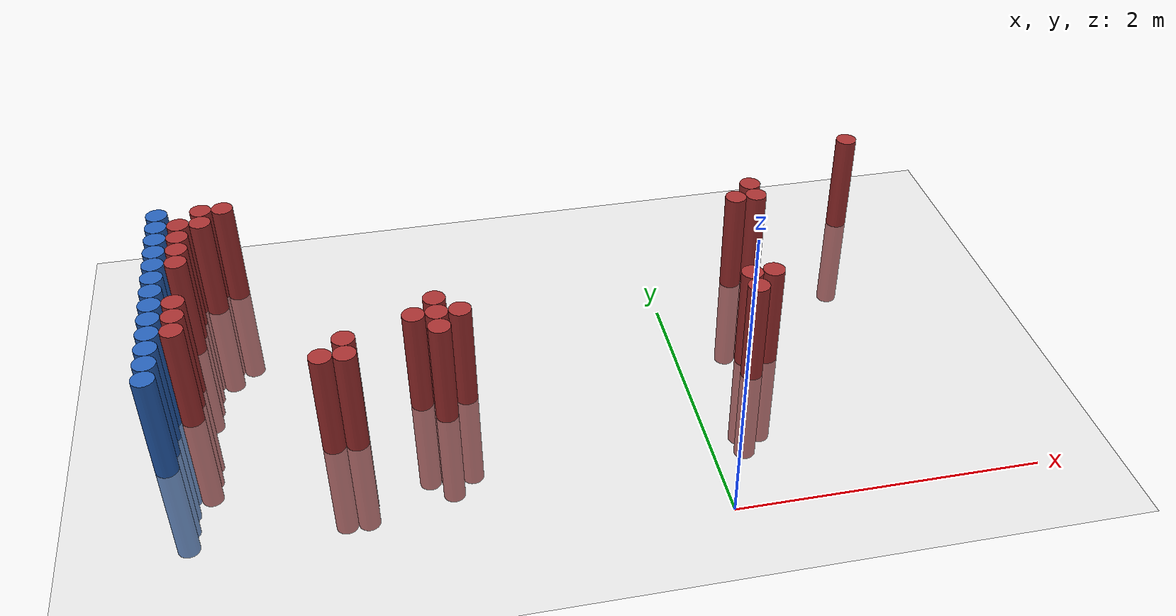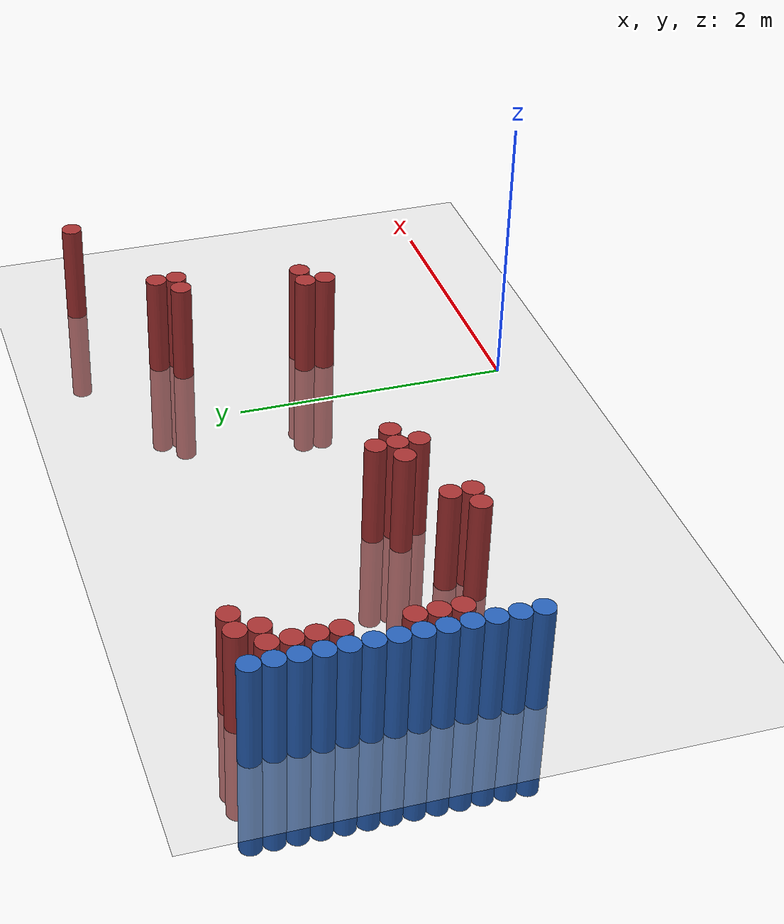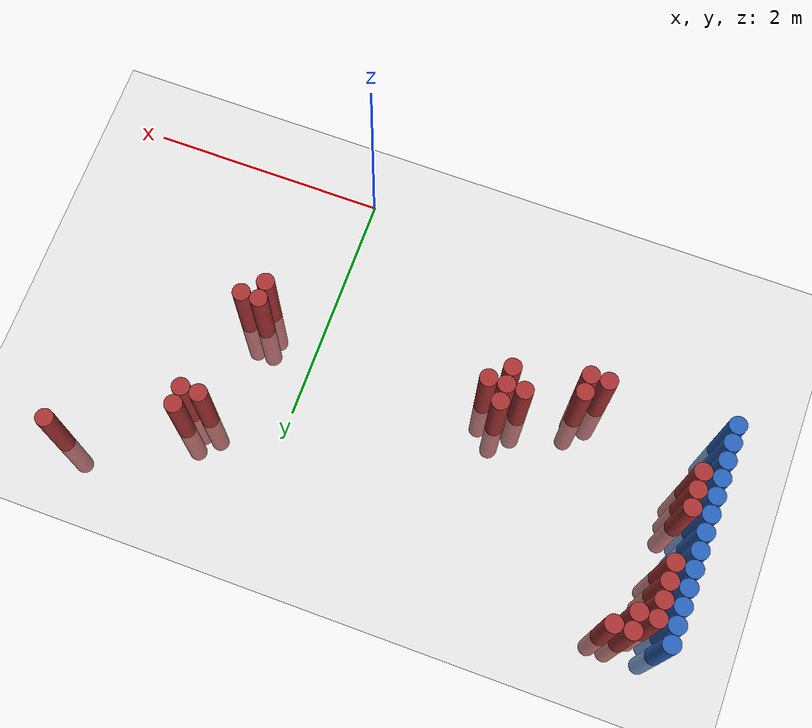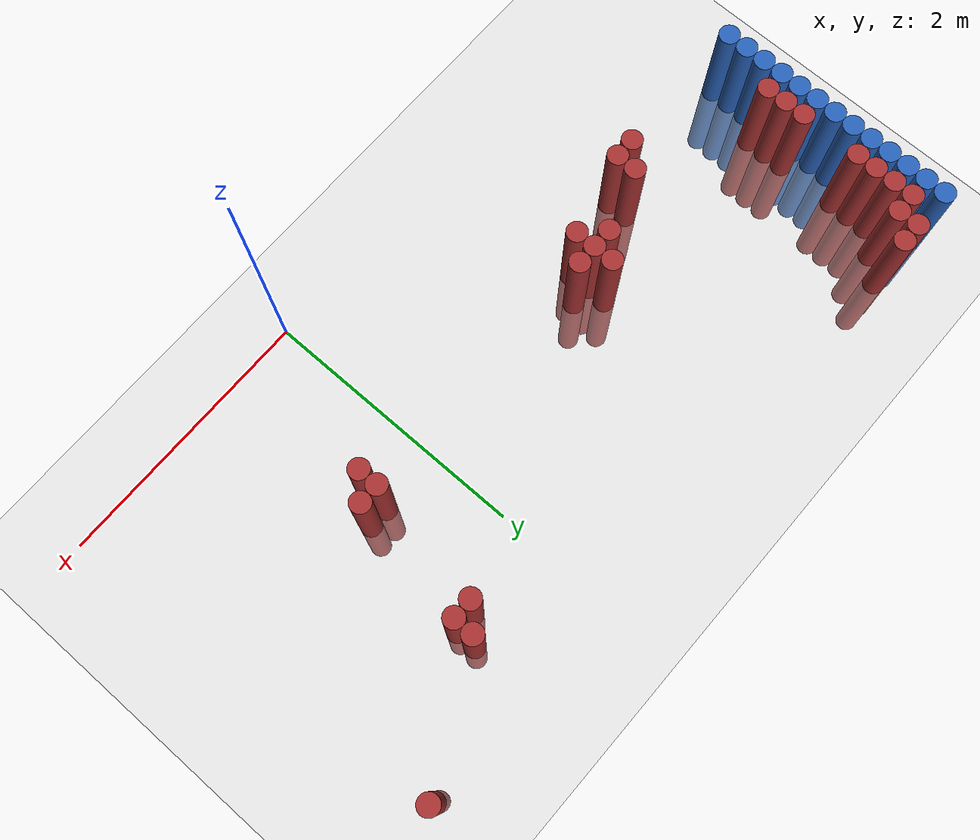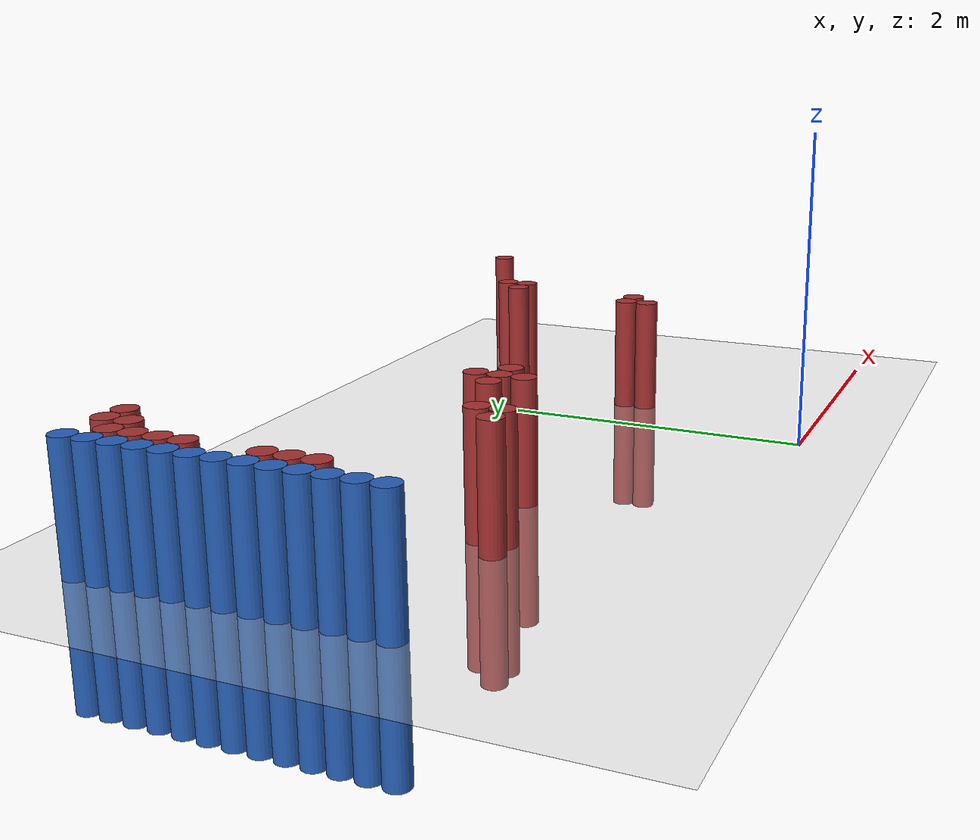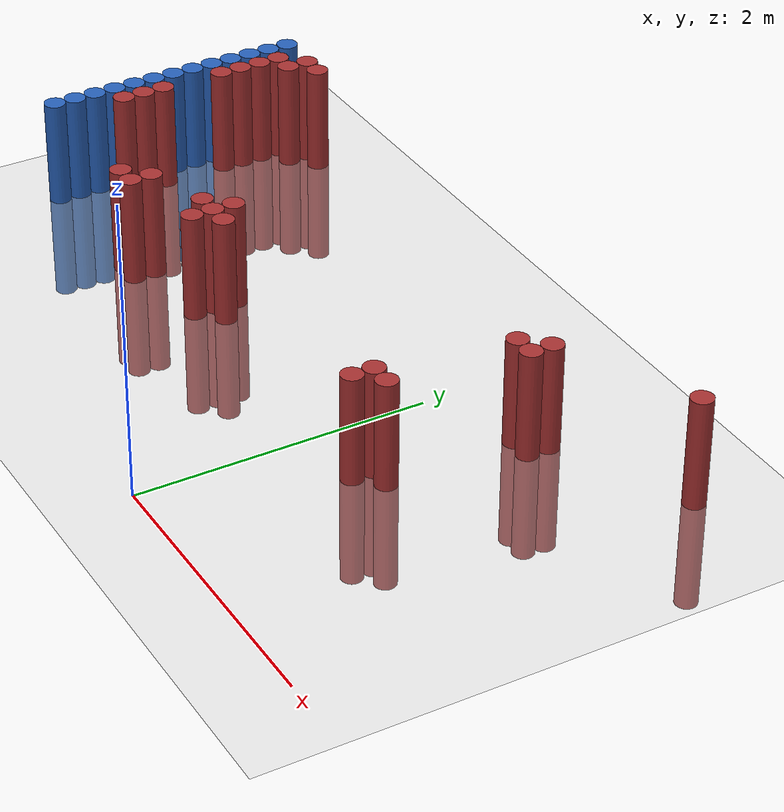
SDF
<sdf version="1.6">
 <world name="default">
  <model name="ground_plane">
   <static>1</static>
   <link name="link">
    <collision name="collision">
     <geometry><plane><normal>0 0 1</normal><size>100 100</size></plane></geometry>
     <surface><friction><ode><mu>100</mu><mu2>50</mu2></ode></friction></surface>
    </collision>
    <visual name="visual">
     <cast_shadows>0</cast_shadows>
     <geometry><plane><normal>0 0 1</normal><size>100 100</size></plane></geometry>
     <material>
      <script><uri>file://media/materials/scripts/gazebo.material</uri><name>Gazebo/Grey</name></script>
     </material>
    </visual>
   </link>
  </model>
  <model name="unit_cylinder_129">
   <static>1</static>
   <pose>-3.425000 1.075000 0.000000 0.000000 0.000000 0.000000</pose>
   <link name="link">
    <inertial>
     <mass>1</mass>
     <inertia><ixx>0.145833</ixx><ixy>0</ixy><ixz>0</ixz><iyy>0.145833</iyy><iyz>0</iyz><izz>0.125</izz></inertia>
    </inertial>
    <collision name="collision">
     <geometry><cylinder><radius>0.075000</radius><length>1.5</length></cylinder></geometry>
    </collision>
    <visual name="visual">
     <geometry><cylinder><radius>0.075000</radius><length>1.5</length></cylinder></geometry>
     <material>
      <ambient>0.152000 0.379000 0.720000 1</ambient>
      <diffuse>0.152000 0.379000 0.720000 1</diffuse>
     </material>
     <material>
      <script><name>Gazebo/Grey</name><uri>file://media/materials/scripts/gazebo.material</uri></script>
     </material>
    </visual>
   </link>
  </model>
  <model name="unit_cylinder_131">
   <static>1</static>
   <pose>-3.425000 1.225000 0.000000 0.000000 0.000000 0.000000</pose>
   <link name="link">
    <inertial>
     <mass>1</mass>
     <inertia><ixx>0.145833</ixx><ixy>0</ixy><ixz>0</ixz><iyy>0.145833</iyy><iyz>0</iyz><izz>0.125</izz></inertia>
    </inertial>
    <collision name="collision">
     <geometry><cylinder><radius>0.075000</radius><length>1.5</length></cylinder></geometry>
    </collision>
    <visual name="visual">
     <geometry><cylinder><radius>0.075000</radius><length>1.5</length></cylinder></geometry>
     <material>
      <ambient>0.152000 0.379000 0.720000 1</ambient>
      <diffuse>0.152000 0.379000 0.720000 1</diffuse>
     </material>
     <material>
      <script><name>Gazebo/Grey</name><uri>file://media/materials/scripts/gazebo.material</uri></script>
     </material>
    </visual>
   </link>
  </model>
  <model name="unit_cylinder_133">
   <static>1</static>
   <pose>-3.425000 1.375000 0.000000 0.000000 0.000000 0.000000</pose>
   <link name="link">
    <inertial>
     <mass>1</mass>
     <inertia><ixx>0.145833</ixx><ixy>0</ixy><ixz>0</ixz><iyy>0.145833</iyy><iyz>0</iyz><izz>0.125</izz></inertia>
    </inertial>
    <collision name="collision">
     <geometry><cylinder><radius>0.075000</radius><length>1.5</length></cylinder></geometry>
    </collision>
    <visual name="visual">
     <geometry><cylinder><radius>0.075000</radius><length>1.5</length></cylinder></geometry>
     <material>
      <ambient>0.152000 0.379000 0.720000 1</ambient>
      <diffuse>0.152000 0.379000 0.720000 1</diffuse>
     </material>
     <material>
      <script><name>Gazebo/Grey</name><uri>file://media/materials/scripts/gazebo.material</uri></script>
     </material>
    </visual>
   </link>
  </model>
  <model name="unit_cylinder_135">
   <static>1</static>
   <pose>-3.425000 1.525000 0.000000 0.000000 0.000000 0.000000</pose>
   <link name="link">
    <inertial>
     <mass>1</mass>
     <inertia><ixx>0.145833</ixx><ixy>0</ixy><ixz>0</ixz><iyy>0.145833</iyy><iyz>0</iyz><izz>0.125</izz></inertia>
    </inertial>
    <collision name="collision">
     <geometry><cylinder><radius>0.075000</radius><length>1.5</length></cylinder></geometry>
    </collision>
    <visual name="visual">
     <geometry><cylinder><radius>0.075000</radius><length>1.5</length></cylinder></geometry>
     <material>
      <ambient>0.152000 0.379000 0.720000 1</ambient>
      <diffuse>0.152000 0.379000 0.720000 1</diffuse>
     </material>
     <material>
      <script><name>Gazebo/Grey</name><uri>file://media/materials/scripts/gazebo.material</uri></script>
     </material>
    </visual>
   </link>
  </model>
  <model name="unit_cylinder_137">
   <static>1</static>
   <pose>-3.425000 1.675000 0.000000 0.000000 0.000000 0.000000</pose>
   <link name="link">
    <inertial>
     <mass>1</mass>
     <inertia><ixx>0.145833</ixx><ixy>0</ixy><ixz>0</ixz><iyy>0.145833</iyy><iyz>0</iyz><izz>0.125</izz></inertia>
    </inertial>
    <collision name="collision">
     <geometry><cylinder><radius>0.075000</radius><length>1.5</length></cylinder></geometry>
    </collision>
    <visual name="visual">
     <geometry><cylinder><radius>0.075000</radius><length>1.5</length></cylinder></geometry>
     <material>
      <ambient>0.152000 0.379000 0.720000 1</ambient>
      <diffuse>0.152000 0.379000 0.720000 1</diffuse>
     </material>
     <material>
      <script><name>Gazebo/Grey</name><uri>file://media/materials/scripts/gazebo.material</uri></script>
     </material>
    </visual>
   </link>
  </model>
  <model name="unit_cylinder_139">
   <static>1</static>
   <pose>-3.425000 1.825000 0.000000 0.000000 0.000000 0.000000</pose>
   <link name="link">
    <inertial>
     <mass>1</mass>
     <inertia><ixx>0.145833</ixx><ixy>0</ixy><ixz>0</ixz><iyy>0.145833</iyy><iyz>0</iyz><izz>0.125</izz></inertia>
    </inertial>
    <collision name="collision">
     <geometry><cylinder><radius>0.075000</radius><length>1.5</length></cylinder></geometry>
    </collision>
    <visual name="visual">
     <geometry><cylinder><radius>0.075000</radius><length>1.5</length></cylinder></geometry>
     <material>
      <ambient>0.152000 0.379000 0.720000 1</ambient>
      <diffuse>0.152000 0.379000 0.720000 1</diffuse>
     </material>
     <material>
      <script><name>Gazebo/Grey</name><uri>file://media/materials/scripts/gazebo.material</uri></script>
     </material>
    </visual>
   </link>
  </model>
  <model name="unit_cylinder_141">
   <static>1</static>
   <pose>-3.425000 1.975000 0.000000 0.000000 0.000000 0.000000</pose>
   <link name="link">
    <inertial>
     <mass>1</mass>
     <inertia><ixx>0.145833</ixx><ixy>0</ixy><ixz>0</ixz><iyy>0.145833</iyy><iyz>0</iyz><izz>0.125</izz></inertia>
    </inertial>
    <collision name="collision">
     <geometry><cylinder><radius>0.075000</radius><length>1.5</length></cylinder></geometry>
    </collision>
    <visual name="visual">
     <geometry><cylinder><radius>0.075000</radius><length>1.5</length></cylinder></geometry>
     <material>
      <ambient>0.152000 0.379000 0.720000 1</ambient>
      <diffuse>0.152000 0.379000 0.720000 1</diffuse>
     </material>
     <material>
      <script><name>Gazebo/Grey</name><uri>file://media/materials/scripts/gazebo.material</uri></script>
     </material>
    </visual>
   </link>
  </model>
  <model name="unit_cylinder_143">
   <static>1</static>
   <pose>-3.425000 2.125000 0.000000 0.000000 0.000000 0.000000</pose>
   <link name="link">
    <inertial>
     <mass>1</mass>
     <inertia><ixx>0.145833</ixx><ixy>0</ixy><ixz>0</ixz><iyy>0.145833</iyy><iyz>0</iyz><izz>0.125</izz></inertia>
    </inertial>
    <collision name="collision">
     <geometry><cylinder><radius>0.075000</radius><length>1.5</length></cylinder></geometry>
    </collision>
    <visual name="visual">
     <geometry><cylinder><radius>0.075000</radius><length>1.5</length></cylinder></geometry>
     <material>
      <ambient>0.152000 0.379000 0.720000 1</ambient>
      <diffuse>0.152000 0.379000 0.720000 1</diffuse>
     </material>
     <material>
      <script><name>Gazebo/Grey</name><uri>file://media/materials/scripts/gazebo.material</uri></script>
     </material>
    </visual>
   </link>
  </model>
  <model name="unit_cylinder_145">
   <static>1</static>
   <pose>-3.425000 2.275000 0.000000 0.000000 0.000000 0.000000</pose>
   <link name="link">
    <inertial>
     <mass>1</mass>
     <inertia><ixx>0.145833</ixx><ixy>0</ixy><ixz>0</ixz><iyy>0.145833</iyy><iyz>0</iyz><izz>0.125</izz></inertia>
    </inertial>
    <collision name="collision">
     <geometry><cylinder><radius>0.075000</radius><length>1.5</length></cylinder></geometry>
    </collision>
    <visual name="visual">
     <geometry><cylinder><radius>0.075000</radius><length>1.5</length></cylinder></geometry>
     <material>
      <ambient>0.152000 0.379000 0.720000 1</ambient>
      <diffuse>0.152000 0.379000 0.720000 1</diffuse>
     </material>
     <material>
      <script><name>Gazebo/Grey</name><uri>file://media/materials/scripts/gazebo.material</uri></script>
     </material>
    </visual>
   </link>
  </model>
  <model name="unit_cylinder_147">
   <static>1</static>
   <pose>-3.425000 2.425000 0.000000 0.000000 0.000000 0.000000</pose>
   <link name="link">
    <inertial>
     <mass>1</mass>
     <inertia><ixx>0.145833</ixx><ixy>0</ixy><ixz>0</ixz><iyy>0.145833</iyy><iyz>0</iyz><izz>0.125</izz></inertia>
    </inertial>
    <collision name="collision">
     <geometry><cylinder><radius>0.075000</radius><length>1.5</length></cylinder></geometry>
    </collision>
    <visual name="visual">
     <geometry><cylinder><radius>0.075000</radius><length>1.5</length></cylinder></geometry>
     <material>
      <ambient>0.152000 0.379000 0.720000 1</ambient>
      <diffuse>0.152000 0.379000 0.720000 1</diffuse>
     </material>
     <material>
      <script><name>Gazebo/Grey</name><uri>file://media/materials/scripts/gazebo.material</uri></script>
     </material>
    </visual>
   </link>
  </model>
  <model name="unit_cylinder_149">
   <static>1</static>
   <pose>-3.425000 2.575000 0.000000 0.000000 0.000000 0.000000</pose>
   <link name="link">
    <inertial>
     <mass>1</mass>
     <inertia><ixx>0.145833</ixx><ixy>0</ixy><ixz>0</ixz><iyy>0.145833</iyy><iyz>0</iyz><izz>0.125</izz></inertia>
    </inertial>
    <collision name="collision">
     <geometry><cylinder><radius>0.075000</radius><length>1.5</length></cylinder></geometry>
    </collision>
    <visual name="visual">
     <geometry><cylinder><radius>0.075000</radius><length>1.5</length></cylinder></geometry>
     <material>
      <ambient>0.152000 0.379000 0.720000 1</ambient>
      <diffuse>0.152000 0.379000 0.720000 1</diffuse>
     </material>
     <material>
      <script><name>Gazebo/Grey</name><uri>file://media/materials/scripts/gazebo.material</uri></script>
     </material>
    </visual>
   </link>
  </model>
  <model name="unit_cylinder_151">
   <static>1</static>
   <pose>-3.425000 2.725000 0.000000 0.000000 0.000000 0.000000</pose>
   <link name="link">
    <inertial>
     <mass>1</mass>
     <inertia><ixx>0.145833</ixx><ixy>0</ixy><ixz>0</ixz><iyy>0.145833</iyy><iyz>0</iyz><izz>0.125</izz></inertia>
    </inertial>
    <collision name="collision">
     <geometry><cylinder><radius>0.075000</radius><length>1.5</length></cylinder></geometry>
    </collision>
    <visual name="visual">
     <geometry><cylinder><radius>0.075000</radius><length>1.5</length></cylinder></geometry>
     <material>
      <ambient>0.152000 0.379000 0.720000 1</ambient>
      <diffuse>0.152000 0.379000 0.720000 1</diffuse>
     </material>
     <material>
      <script><name>Gazebo/Grey</name><uri>file://media/materials/scripts/gazebo.material</uri></script>
     </material>
    </visual>
   </link>
  </model>
  <model name="unit_cylinder_153">
   <static>1</static>
   <pose>-3.425000 2.875000 0.000000 0.000000 0.000000 0.000000</pose>
   <link name="link">
    <inertial>
     <mass>1</mass>
     <inertia><ixx>0.145833</ixx><ixy>0</ixy><ixz>0</ixz><iyy>0.145833</iyy><iyz>0</iyz><izz>0.125</izz></inertia>
    </inertial>
    <collision name="collision">
     <geometry><cylinder><radius>0.075000</radius><length>1.5</length></cylinder></geometry>
    </collision>
    <visual name="visual">
     <geometry><cylinder><radius>0.075000</radius><length>1.5</length></cylinder></geometry>
     <material>
      <ambient>0.152000 0.379000 0.720000 1</ambient>
      <diffuse>0.152000 0.379000 0.720000 1</diffuse>
     </material>
     <material>
      <script><name>Gazebo/Grey</name><uri>file://media/materials/scripts/gazebo.material</uri></script>
     </material>
    </visual>
   </link>
  </model>
  <model name="unit_cylinder_228">
   <static>1</static>
   <pose>-3.425000 1.075000 0.000000 0.000000 0.000000 0.000000</pose>
   <link name="link">
    <inertial>
     <mass>1</mass>
     <inertia><ixx>0.145833</ixx><ixy>0</ixy><ixz>0</ixz><iyy>0.145833</iyy><iyz>0</iyz><izz>0.125</izz></inertia>
    </inertial>
    <collision name="collision">
     <geometry><cylinder><radius>0.075000</radius><length>1.5</length></cylinder></geometry>
    </collision>
    <visual name="visual">
     <geometry><cylinder><radius>0.075000</radius><length>1.5</length></cylinder></geometry>
     <material>
      <ambient>0.152000 0.379000 0.720000 1</ambient>
      <diffuse>0.152000 0.379000 0.720000 1</diffuse>
     </material>
     <material>
      <script><name>Gazebo/Grey</name><uri>file://media/materials/scripts/gazebo.material</uri></script>
     </material>
    </visual>
   </link>
  </model>
  <model name="unit_cylinder_229">
   <static>1</static>
   <pose>-3.425000 1.225000 0.000000 0.000000 0.000000 0.000000</pose>
   <link name="link">
    <inertial>
     <mass>1</mass>
     <inertia><ixx>0.145833</ixx><ixy>0</ixy><ixz>0</ixz><iyy>0.145833</iyy><iyz>0</iyz><izz>0.125</izz></inertia>
    </inertial>
    <collision name="collision">
     <geometry><cylinder><radius>0.075000</radius><length>1.5</length></cylinder></geometry>
    </collision>
    <visual name="visual">
     <geometry><cylinder><radius>0.075000</radius><length>1.5</length></cylinder></geometry>
     <material>
      <ambient>0.152000 0.379000 0.720000 1</ambient>
      <diffuse>0.152000 0.379000 0.720000 1</diffuse>
     </material>
     <material>
      <script><name>Gazebo/Grey</name><uri>file://media/materials/scripts/gazebo.material</uri></script>
     </material>
    </visual>
   </link>
  </model>
  <model name="unit_cylinder_230">
   <static>1</static>
   <pose>-3.425000 1.375000 0.000000 0.000000 0.000000 0.000000</pose>
   <link name="link">
    <inertial>
     <mass>1</mass>
     <inertia><ixx>0.145833</ixx><ixy>0</ixy><ixz>0</ixz><iyy>0.145833</iyy><iyz>0</iyz><izz>0.125</izz></inertia>
    </inertial>
    <collision name="collision">
     <geometry><cylinder><radius>0.075000</radius><length>1.5</length></cylinder></geometry>
    </collision>
    <visual name="visual">
     <geometry><cylinder><radius>0.075000</radius><length>1.5</length></cylinder></geometry>
     <material>
      <ambient>0.152000 0.379000 0.720000 1</ambient>
      <diffuse>0.152000 0.379000 0.720000 1</diffuse>
     </material>
     <material>
      <script><name>Gazebo/Grey</name><uri>file://media/materials/scripts/gazebo.material</uri></script>
     </material>
    </visual>
   </link>
  </model>
  <model name="unit_cylinder_231">
   <static>1</static>
   <pose>-3.425000 1.525000 0.000000 0.000000 0.000000 0.000000</pose>
   <link name="link">
    <inertial>
     <mass>1</mass>
     <inertia><ixx>0.145833</ixx><ixy>0</ixy><ixz>0</ixz><iyy>0.145833</iyy><iyz>0</iyz><izz>0.125</izz></inertia>
    </inertial>
    <collision name="collision">
     <geometry><cylinder><radius>0.075000</radius><length>1.5</length></cylinder></geometry>
    </collision>
    <visual name="visual">
     <geometry><cylinder><radius>0.075000</radius><length>1.5</length></cylinder></geometry>
     <material>
      <ambient>0.152000 0.379000 0.720000 1</ambient>
      <diffuse>0.152000 0.379000 0.720000 1</diffuse>
     </material>
     <material>
      <script><name>Gazebo/Grey</name><uri>file://media/materials/scripts/gazebo.material</uri></script>
     </material>
    </visual>
   </link>
  </model>
  <model name="unit_cylinder_232">
   <static>1</static>
   <pose>-3.425000 1.675000 0.000000 0.000000 0.000000 0.000000</pose>
   <link name="link">
    <inertial>
     <mass>1</mass>
     <inertia><ixx>0.145833</ixx><ixy>0</ixy><ixz>0</ixz><iyy>0.145833</iyy><iyz>0</iyz><izz>0.125</izz></inertia>
    </inertial>
    <collision name="collision">
     <geometry><cylinder><radius>0.075000</radius><length>1.5</length></cylinder></geometry>
    </collision>
    <visual name="visual">
     <geometry><cylinder><radius>0.075000</radius><length>1.5</length></cylinder></geometry>
     <material>
      <ambient>0.152000 0.379000 0.720000 1</ambient>
      <diffuse>0.152000 0.379000 0.720000 1</diffuse>
     </material>
     <material>
      <script><name>Gazebo/Grey</name><uri>file://media/materials/scripts/gazebo.material</uri></script>
     </material>
    </visual>
   </link>
  </model>
  <model name="unit_cylinder_233">
   <static>1</static>
   <pose>-3.425000 1.825000 0.000000 0.000000 0.000000 0.000000</pose>
   <link name="link">
    <inertial>
     <mass>1</mass>
     <inertia><ixx>0.145833</ixx><ixy>0</ixy><ixz>0</ixz><iyy>0.145833</iyy><iyz>0</iyz><izz>0.125</izz></inertia>
    </inertial>
    <collision name="collision">
     <geometry><cylinder><radius>0.075000</radius><length>1.5</length></cylinder></geometry>
    </collision>
    <visual name="visual">
     <geometry><cylinder><radius>0.075000</radius><length>1.5</length></cylinder></geometry>
     <material>
      <ambient>0.152000 0.379000 0.720000 1</ambient>
      <diffuse>0.152000 0.379000 0.720000 1</diffuse>
     </material>
     <material>
      <script><name>Gazebo/Grey</name><uri>file://media/materials/scripts/gazebo.material</uri></script>
     </material>
    </visual>
   </link>
  </model>
  <model name="unit_cylinder_234">
   <static>1</static>
   <pose>-3.425000 1.975000 0.000000 0.000000 0.000000 0.000000</pose>
   <link name="link">
    <inertial>
     <mass>1</mass>
     <inertia><ixx>0.145833</ixx><ixy>0</ixy><ixz>0</ixz><iyy>0.145833</iyy><iyz>0</iyz><izz>0.125</izz></inertia>
    </inertial>
    <collision name="collision">
     <geometry><cylinder><radius>0.075000</radius><length>1.5</length></cylinder></geometry>
    </collision>
    <visual name="visual">
     <geometry><cylinder><radius>0.075000</radius><length>1.5</length></cylinder></geometry>
     <material>
      <ambient>0.152000 0.379000 0.720000 1</ambient>
      <diffuse>0.152000 0.379000 0.720000 1</diffuse>
     </material>
     <material>
      <script><name>Gazebo/Grey</name><uri>file://media/materials/scripts/gazebo.material</uri></script>
     </material>
    </visual>
   </link>
  </model>
  <model name="unit_cylinder_235">
   <static>1</static>
   <pose>-3.425000 2.125000 0.000000 0.000000 0.000000 0.000000</pose>
   <link name="link">
    <inertial>
     <mass>1</mass>
     <inertia><ixx>0.145833</ixx><ixy>0</ixy><ixz>0</ixz><iyy>0.145833</iyy><iyz>0</iyz><izz>0.125</izz></inertia>
    </inertial>
    <collision name="collision">
     <geometry><cylinder><radius>0.075000</radius><length>1.5</length></cylinder></geometry>
    </collision>
    <visual name="visual">
     <geometry><cylinder><radius>0.075000</radius><length>1.5</length></cylinder></geometry>
     <material>
      <ambient>0.152000 0.379000 0.720000 1</ambient>
      <diffuse>0.152000 0.379000 0.720000 1</diffuse>
     </material>
     <material>
      <script><name>Gazebo/Grey</name><uri>file://media/materials/scripts/gazebo.material</uri></script>
     </material>
    </visual>
   </link>
  </model>
  <model name="unit_cylinder_236">
   <static>1</static>
   <pose>-3.425000 2.275000 0.000000 0.000000 0.000000 0.000000</pose>
   <link name="link">
    <inertial>
     <mass>1</mass>
     <inertia><ixx>0.145833</ixx><ixy>0</ixy><ixz>0</ixz><iyy>0.145833</iyy><iyz>0</iyz><izz>0.125</izz></inertia>
    </inertial>
    <collision name="collision">
     <geometry><cylinder><radius>0.075000</radius><length>1.5</length></cylinder></geometry>
    </collision>
    <visual name="visual">
     <geometry><cylinder><radius>0.075000</radius><length>1.5</length></cylinder></geometry>
     <material>
      <ambient>0.152000 0.379000 0.720000 1</ambient>
      <diffuse>0.152000 0.379000 0.720000 1</diffuse>
     </material>
     <material>
      <script><name>Gazebo/Grey</name><uri>file://media/materials/scripts/gazebo.material</uri></script>
     </material>
    </visual>
   </link>
  </model>
  <model name="unit_cylinder_237">
   <static>1</static>
   <pose>-3.425000 2.425000 0.000000 0.000000 0.000000 0.000000</pose>
   <link name="link">
    <inertial>
     <mass>1</mass>
     <inertia><ixx>0.145833</ixx><ixy>0</ixy><ixz>0</ixz><iyy>0.145833</iyy><iyz>0</iyz><izz>0.125</izz></inertia>
    </inertial>
    <collision name="collision">
     <geometry><cylinder><radius>0.075000</radius><length>1.5</length></cylinder></geometry>
    </collision>
    <visual name="visual">
     <geometry><cylinder><radius>0.075000</radius><length>1.5</length></cylinder></geometry>
     <material>
      <ambient>0.152000 0.379000 0.720000 1</ambient>
      <diffuse>0.152000 0.379000 0.720000 1</diffuse>
     </material>
     <material>
      <script><name>Gazebo/Grey</name><uri>file://media/materials/scripts/gazebo.material</uri></script>
     </material>
    </visual>
   </link>
  </model>
  <model name="unit_cylinder_238">
   <static>1</static>
   <pose>-3.425000 2.575000 0.000000 0.000000 0.000000 0.000000</pose>
   <link name="link">
    <inertial>
     <mass>1</mass>
     <inertia><ixx>0.145833</ixx><ixy>0</ixy><ixz>0</ixz><iyy>0.145833</iyy><iyz>0</iyz><izz>0.125</izz></inertia>
    </inertial>
    <collision name="collision">
     <geometry><cylinder><radius>0.075000</radius><length>1.5</length></cylinder></geometry>
    </collision>
    <visual name="visual">
     <geometry><cylinder><radius>0.075000</radius><length>1.5</length></cylinder></geometry>
     <material>
      <ambient>0.152000 0.379000 0.720000 1</ambient>
      <diffuse>0.152000 0.379000 0.720000 1</diffuse>
     </material>
     <material>
      <script><name>Gazebo/Grey</name><uri>file://media/materials/scripts/gazebo.material</uri></script>
     </material>
    </visual>
   </link>
  </model>
  <model name="unit_cylinder_239">
   <static>1</static>
   <pose>-3.425000 2.725000 0.000000 0.000000 0.000000 0.000000</pose>
   <link name="link">
    <inertial>
     <mass>1</mass>
     <inertia><ixx>0.145833</ixx><ixy>0</ixy><ixz>0</ixz><iyy>0.145833</iyy><iyz>0</iyz><izz>0.125</izz></inertia>
    </inertial>
    <collision name="collision">
     <geometry><cylinder><radius>0.075000</radius><length>1.5</length></cylinder></geometry>
    </collision>
    <visual name="visual">
     <geometry><cylinder><radius>0.075000</radius><length>1.5</length></cylinder></geometry>
     <material>
      <ambient>0.152000 0.379000 0.720000 1</ambient>
      <diffuse>0.152000 0.379000 0.720000 1</diffuse>
     </material>
     <material>
      <script><name>Gazebo/Grey</name><uri>file://media/materials/scripts/gazebo.material</uri></script>
     </material>
    </visual>
   </link>
  </model>
  <model name="unit_cylinder_240">
   <static>1</static>
   <pose>-3.425000 2.875000 0.000000 0.000000 0.000000 0.000000</pose>
   <link name="link">
    <inertial>
     <mass>1</mass>
     <inertia><ixx>0.145833</ixx><ixy>0</ixy><ixz>0</ixz><iyy>0.145833</iyy><iyz>0</iyz><izz>0.125</izz></inertia>
    </inertial>
    <collision name="collision">
     <geometry><cylinder><radius>0.075000</radius><length>1.5</length></cylinder></geometry>
    </collision>
    <visual name="visual">
     <geometry><cylinder><radius>0.075000</radius><length>1.5</length></cylinder></geometry>
     <material>
      <ambient>0.152000 0.379000 0.720000 1</ambient>
      <diffuse>0.152000 0.379000 0.720000 1</diffuse>
     </material>
     <material>
      <script><name>Gazebo/Grey</name><uri>file://media/materials/scripts/gazebo.material</uri></script>
     </material>
    </visual>
   </link>
  </model>
  <model name="unit_cylinder_266">
   <static>1</static>
   <pose>-3.275000 1.525000 0.000000 0.000000 0.000000 0.000000</pose>
   <link name="link">
    <inertial>
     <mass>1</mass>
     <inertia><ixx>0.145833</ixx><ixy>0</ixy><ixz>0</ixz><iyy>0.145833</iyy><iyz>0</iyz><izz>0.125</izz></inertia>
    </inertial>
    <collision name="collision">
     <geometry><cylinder><radius>0.075000</radius><length>1.5</length></cylinder></geometry>
    </collision>
    <visual name="visual">
     <geometry><cylinder><radius>0.075000</radius><length>1.5</length></cylinder></geometry>
     <material>
      <ambient>0.648000 0.192000 0.192000 1</ambient>
      <diffuse>0.648000 0.192000 0.192000 1</diffuse>
     </material>
     <material>
      <script><name>Gazebo/Grey</name><uri>file://media/materials/scripts/gazebo.material</uri></script>
     </material>
    </visual>
   </link>
  </model>
  <model name="unit_cylinder_267">
   <static>1</static>
   <pose>-3.275000 1.675000 0.000000 0.000000 0.000000 0.000000</pose>
   <link name="link">
    <inertial>
     <mass>1</mass>
     <inertia><ixx>0.145833</ixx><ixy>0</ixy><ixz>0</ixz><iyy>0.145833</iyy><iyz>0</iyz><izz>0.125</izz></inertia>
    </inertial>
    <collision name="collision">
     <geometry><cylinder><radius>0.075000</radius><length>1.5</length></cylinder></geometry>
    </collision>
    <visual name="visual">
     <geometry><cylinder><radius>0.075000</radius><length>1.5</length></cylinder></geometry>
     <material>
      <ambient>0.648000 0.192000 0.192000 1</ambient>
      <diffuse>0.648000 0.192000 0.192000 1</diffuse>
     </material>
     <material>
      <script><name>Gazebo/Grey</name><uri>file://media/materials/scripts/gazebo.material</uri></script>
     </material>
    </visual>
   </link>
  </model>
  <model name="unit_cylinder_268">
   <static>1</static>
   <pose>-3.275000 1.825000 0.000000 0.000000 0.000000 0.000000</pose>
   <link name="link">
    <inertial>
     <mass>1</mass>
     <inertia><ixx>0.145833</ixx><ixy>0</ixy><ixz>0</ixz><iyy>0.145833</iyy><iyz>0</iyz><izz>0.125</izz></inertia>
    </inertial>
    <collision name="collision">
     <geometry><cylinder><radius>0.075000</radius><length>1.5</length></cylinder></geometry>
    </collision>
    <visual name="visual">
     <geometry><cylinder><radius>0.075000</radius><length>1.5</length></cylinder></geometry>
     <material>
      <ambient>0.648000 0.192000 0.192000 1</ambient>
      <diffuse>0.648000 0.192000 0.192000 1</diffuse>
     </material>
     <material>
      <script><name>Gazebo/Grey</name><uri>file://media/materials/scripts/gazebo.material</uri></script>
     </material>
    </visual>
   </link>
  </model>
  <model name="unit_cylinder_269">
   <static>1</static>
   <pose>-3.275000 2.275000 0.000000 0.000000 0.000000 0.000000</pose>
   <link name="link">
    <inertial>
     <mass>1</mass>
     <inertia><ixx>0.145833</ixx><ixy>0</ixy><ixz>0</ixz><iyy>0.145833</iyy><iyz>0</iyz><izz>0.125</izz></inertia>
    </inertial>
    <collision name="collision">
     <geometry><cylinder><radius>0.075000</radius><length>1.5</length></cylinder></geometry>
    </collision>
    <visual name="visual">
     <geometry><cylinder><radius>0.075000</radius><length>1.5</length></cylinder></geometry>
     <material>
      <ambient>0.648000 0.192000 0.192000 1</ambient>
      <diffuse>0.648000 0.192000 0.192000 1</diffuse>
     </material>
     <material>
      <script><name>Gazebo/Grey</name><uri>file://media/materials/scripts/gazebo.material</uri></script>
     </material>
    </visual>
   </link>
  </model>
  <model name="unit_cylinder_270">
   <static>1</static>
   <pose>-3.275000 2.425000 0.000000 0.000000 0.000000 0.000000</pose>
   <link name="link">
    <inertial>
     <mass>1</mass>
     <inertia><ixx>0.145833</ixx><ixy>0</ixy><ixz>0</ixz><iyy>0.145833</iyy><iyz>0</iyz><izz>0.125</izz></inertia>
    </inertial>
    <collision name="collision">
     <geometry><cylinder><radius>0.075000</radius><length>1.5</length></cylinder></geometry>
    </collision>
    <visual name="visual">
     <geometry><cylinder><radius>0.075000</radius><length>1.5</length></cylinder></geometry>
     <material>
      <ambient>0.648000 0.192000 0.192000 1</ambient>
      <diffuse>0.648000 0.192000 0.192000 1</diffuse>
     </material>
     <material>
      <script><name>Gazebo/Grey</name><uri>file://media/materials/scripts/gazebo.material</uri></script>
     </material>
    </visual>
   </link>
  </model>
  <model name="unit_cylinder_271">
   <static>1</static>
   <pose>-3.275000 2.575000 0.000000 0.000000 0.000000 0.000000</pose>
   <link name="link">
    <inertial>
     <mass>1</mass>
     <inertia><ixx>0.145833</ixx><ixy>0</ixy><ixz>0</ixz><iyy>0.145833</iyy><iyz>0</iyz><izz>0.125</izz></inertia>
    </inertial>
    <collision name="collision">
     <geometry><cylinder><radius>0.075000</radius><length>1.5</length></cylinder></geometry>
    </collision>
    <visual name="visual">
     <geometry><cylinder><radius>0.075000</radius><length>1.5</length></cylinder></geometry>
     <material>
      <ambient>0.648000 0.192000 0.192000 1</ambient>
      <diffuse>0.648000 0.192000 0.192000 1</diffuse>
     </material>
     <material>
      <script><name>Gazebo/Grey</name><uri>file://media/materials/scripts/gazebo.material</uri></script>
     </material>
    </visual>
   </link>
  </model>
  <model name="unit_cylinder_272">
   <static>1</static>
   <pose>-3.275000 2.725000 0.000000 0.000000 0.000000 0.000000</pose>
   <link name="link">
    <inertial>
     <mass>1</mass>
     <inertia><ixx>0.145833</ixx><ixy>0</ixy><ixz>0</ixz><iyy>0.145833</iyy><iyz>0</iyz><izz>0.125</izz></inertia>
    </inertial>
    <collision name="collision">
     <geometry><cylinder><radius>0.075000</radius><length>1.5</length></cylinder></geometry>
    </collision>
    <visual name="visual">
     <geometry><cylinder><radius>0.075000</radius><length>1.5</length></cylinder></geometry>
     <material>
      <ambient>0.648000 0.192000 0.192000 1</ambient>
      <diffuse>0.648000 0.192000 0.192000 1</diffuse>
     </material>
     <material>
      <script><name>Gazebo/Grey</name><uri>file://media/materials/scripts/gazebo.material</uri></script>
     </material>
    </visual>
   </link>
  </model>
  <model name="unit_cylinder_284">
   <static>1</static>
   <pose>-3.125000 2.725000 0.000000 0.000000 0.000000 0.000000</pose>
   <link name="link">
    <inertial>
     <mass>1</mass>
     <inertia><ixx>0.145833</ixx><ixy>0</ixy><ixz>0</ixz><iyy>0.145833</iyy><iyz>0</iyz><izz>0.125</izz></inertia>
    </inertial>
    <collision name="collision">
     <geometry><cylinder><radius>0.075000</radius><length>1.5</length></cylinder></geometry>
    </collision>
    <visual name="visual">
     <geometry><cylinder><radius>0.075000</radius><length>1.5</length></cylinder></geometry>
     <material>
      <ambient>0.648000 0.192000 0.192000 1</ambient>
      <diffuse>0.648000 0.192000 0.192000 1</diffuse>
     </material>
     <material>
      <script><name>Gazebo/Grey</name><uri>file://media/materials/scripts/gazebo.material</uri></script>
     </material>
    </visual>
   </link>
  </model>
  <model name="unit_cylinder_285">
   <static>1</static>
   <pose>-3.125000 2.875000 0.000000 0.000000 0.000000 0.000000</pose>
   <link name="link">
    <inertial>
     <mass>1</mass>
     <inertia><ixx>0.145833</ixx><ixy>0</ixy><ixz>0</ixz><iyy>0.145833</iyy><iyz>0</iyz><izz>0.125</izz></inertia>
    </inertial>
    <collision name="collision">
     <geometry><cylinder><radius>0.075000</radius><length>1.5</length></cylinder></geometry>
    </collision>
    <visual name="visual">
     <geometry><cylinder><radius>0.075000</radius><length>1.5</length></cylinder></geometry>
     <material>
      <ambient>0.648000 0.192000 0.192000 1</ambient>
      <diffuse>0.648000 0.192000 0.192000 1</diffuse>
     </material>
     <material>
      <script><name>Gazebo/Grey</name><uri>file://media/materials/scripts/gazebo.material</uri></script>
     </material>
    </visual>
   </link>
  </model>
  <model name="unit_cylinder_290">
   <static>1</static>
   <pose>-2.975000 2.875000 0.000000 0.000000 0.000000 0.000000</pose>
   <link name="link">
    <inertial>
     <mass>1</mass>
     <inertia><ixx>0.145833</ixx><ixy>0</ixy><ixz>0</ixz><iyy>0.145833</iyy><iyz>0</iyz><izz>0.125</izz></inertia>
    </inertial>
    <collision name="collision">
     <geometry><cylinder><radius>0.075000</radius><length>1.5</length></cylinder></geometry>
    </collision>
    <visual name="visual">
     <geometry><cylinder><radius>0.075000</radius><length>1.5</length></cylinder></geometry>
     <material>
      <ambient>0.648000 0.192000 0.192000 1</ambient>
      <diffuse>0.648000 0.192000 0.192000 1</diffuse>
     </material>
     <material>
      <script><name>Gazebo/Grey</name><uri>file://media/materials/scripts/gazebo.material</uri></script>
     </material>
    </visual>
   </link>
  </model>
  <model name="unit_cylinder_304">
   <static>1</static>
   <pose>-2.375000 1.075000 0.000000 0.000000 0.000000 0.000000</pose>
   <link name="link">
    <inertial>
     <mass>1</mass>
     <inertia><ixx>0.145833</ixx><ixy>0</ixy><ixz>0</ixz><iyy>0.145833</iyy><iyz>0</iyz><izz>0.125</izz></inertia>
    </inertial>
    <collision name="collision">
     <geometry><cylinder><radius>0.075000</radius><length>1.5</length></cylinder></geometry>
    </collision>
    <visual name="visual">
     <geometry><cylinder><radius>0.075000</radius><length>1.5</length></cylinder></geometry>
     <material>
      <ambient>0.648000 0.192000 0.192000 1</ambient>
      <diffuse>0.648000 0.192000 0.192000 1</diffuse>
     </material>
     <material>
      <script><name>Gazebo/Grey</name><uri>file://media/materials/scripts/gazebo.material</uri></script>
     </material>
    </visual>
   </link>
  </model>
  <model name="unit_cylinder_308">
   <static>1</static>
   <pose>-2.225000 1.075000 0.000000 0.000000 0.000000 0.000000</pose>
   <link name="link">
    <inertial>
     <mass>1</mass>
     <inertia><ixx>0.145833</ixx><ixy>0</ixy><ixz>0</ixz><iyy>0.145833</iyy><iyz>0</iyz><izz>0.125</izz></inertia>
    </inertial>
    <collision name="collision">
     <geometry><cylinder><radius>0.075000</radius><length>1.5</length></cylinder></geometry>
    </collision>
    <visual name="visual">
     <geometry><cylinder><radius>0.075000</radius><length>1.5</length></cylinder></geometry>
     <material>
      <ambient>0.648000 0.192000 0.192000 1</ambient>
      <diffuse>0.648000 0.192000 0.192000 1</diffuse>
     </material>
     <material>
      <script><name>Gazebo/Grey</name><uri>file://media/materials/scripts/gazebo.material</uri></script>
     </material>
    </visual>
   </link>
  </model>
  <model name="unit_cylinder_309">
   <static>1</static>
   <pose>-2.225000 1.225000 0.000000 0.000000 0.000000 0.000000</pose>
   <link name="link">
    <inertial>
     <mass>1</mass>
     <inertia><ixx>0.145833</ixx><ixy>0</ixy><ixz>0</ixz><iyy>0.145833</iyy><iyz>0</iyz><izz>0.125</izz></inertia>
    </inertial>
    <collision name="collision">
     <geometry><cylinder><radius>0.075000</radius><length>1.5</length></cylinder></geometry>
    </collision>
    <visual name="visual">
     <geometry><cylinder><radius>0.075000</radius><length>1.5</length></cylinder></geometry>
     <material>
      <ambient>0.648000 0.192000 0.192000 1</ambient>
      <diffuse>0.648000 0.192000 0.192000 1</diffuse>
     </material>
     <material>
      <script><name>Gazebo/Grey</name><uri>file://media/materials/scripts/gazebo.material</uri></script>
     </material>
    </visual>
   </link>
  </model>
  <model name="unit_cylinder_324">
   <static>1</static>
   <pose>-1.775000 1.375000 0.000000 0.000000 0.000000 0.000000</pose>
   <link name="link">
    <inertial>
     <mass>1</mass>
     <inertia><ixx>0.145833</ixx><ixy>0</ixy><ixz>0</ixz><iyy>0.145833</iyy><iyz>0</iyz><izz>0.125</izz></inertia>
    </inertial>
    <collision name="collision">
     <geometry><cylinder><radius>0.075000</radius><length>1.5</length></cylinder></geometry>
    </collision>
    <visual name="visual">
     <geometry><cylinder><radius>0.075000</radius><length>1.5</length></cylinder></geometry>
     <material>
      <ambient>0.648000 0.192000 0.192000 1</ambient>
      <diffuse>0.648000 0.192000 0.192000 1</diffuse>
     </material>
     <material>
      <script><name>Gazebo/Grey</name><uri>file://media/materials/scripts/gazebo.material</uri></script>
     </material>
    </visual>
   </link>
  </model>
  <model name="unit_cylinder_329">
   <static>1</static>
   <pose>-1.625000 1.225000 0.000000 0.000000 0.000000 0.000000</pose>
   <link name="link">
    <inertial>
     <mass>1</mass>
     <inertia><ixx>0.145833</ixx><ixy>0</ixy><ixz>0</ixz><iyy>0.145833</iyy><iyz>0</iyz><izz>0.125</izz></inertia>
    </inertial>
    <collision name="collision">
     <geometry><cylinder><radius>0.075000</radius><length>1.5</length></cylinder></geometry>
    </collision>
    <visual name="visual">
     <geometry><cylinder><radius>0.075000</radius><length>1.5</length></cylinder></geometry>
     <material>
      <ambient>0.648000 0.192000 0.192000 1</ambient>
      <diffuse>0.648000 0.192000 0.192000 1</diffuse>
     </material>
     <material>
      <script><name>Gazebo/Grey</name><uri>file://media/materials/scripts/gazebo.material</uri></script>
     </material>
    </visual>
   </link>
  </model>
  <model name="unit_cylinder_330">
   <static>1</static>
   <pose>-1.625000 1.375000 0.000000 0.000000 0.000000 0.000000</pose>
   <link name="link">
    <inertial>
     <mass>1</mass>
     <inertia><ixx>0.145833</ixx><ixy>0</ixy><ixz>0</ixz><iyy>0.145833</iyy><iyz>0</iyz><izz>0.125</izz></inertia>
    </inertial>
    <collision name="collision">
     <geometry><cylinder><radius>0.075000</radius><length>1.5</length></cylinder></geometry>
    </collision>
    <visual name="visual">
     <geometry><cylinder><radius>0.075000</radius><length>1.5</length></cylinder></geometry>
     <material>
      <ambient>0.648000 0.192000 0.192000 1</ambient>
      <diffuse>0.648000 0.192000 0.192000 1</diffuse>
     </material>
     <material>
      <script><name>Gazebo/Grey</name><uri>file://media/materials/scripts/gazebo.material</uri></script>
     </material>
    </visual>
   </link>
  </model>
  <model name="unit_cylinder_331">
   <static>1</static>
   <pose>-1.625000 1.525000 0.000000 0.000000 0.000000 0.000000</pose>
   <link name="link">
    <inertial>
     <mass>1</mass>
     <inertia><ixx>0.145833</ixx><ixy>0</ixy><ixz>0</ixz><iyy>0.145833</iyy><iyz>0</iyz><izz>0.125</izz></inertia>
    </inertial>
    <collision name="collision">
     <geometry><cylinder><radius>0.075000</radius><length>1.5</length></cylinder></geometry>
    </collision>
    <visual name="visual">
     <geometry><cylinder><radius>0.075000</radius><length>1.5</length></cylinder></geometry>
     <material>
      <ambient>0.648000 0.192000 0.192000 1</ambient>
      <diffuse>0.648000 0.192000 0.192000 1</diffuse>
     </material>
     <material>
      <script><name>Gazebo/Grey</name><uri>file://media/materials/scripts/gazebo.material</uri></script>
     </material>
    </visual>
   </link>
  </model>
  <model name="unit_cylinder_334">
   <static>1</static>
   <pose>-1.475000 1.375000 0.000000 0.000000 0.000000 0.000000</pose>
   <link name="link">
    <inertial>
     <mass>1</mass>
     <inertia><ixx>0.145833</ixx><ixy>0</ixy><ixz>0</ixz><iyy>0.145833</iyy><iyz>0</iyz><izz>0.125</izz></inertia>
    </inertial>
    <collision name="collision">
     <geometry><cylinder><radius>0.075000</radius><length>1.5</length></cylinder></geometry>
    </collision>
    <visual name="visual">
     <geometry><cylinder><radius>0.075000</radius><length>1.5</length></cylinder></geometry>
     <material>
      <ambient>0.648000 0.192000 0.192000 1</ambient>
      <diffuse>0.648000 0.192000 0.192000 1</diffuse>
     </material>
     <material>
      <script><name>Gazebo/Grey</name><uri>file://media/materials/scripts/gazebo.material</uri></script>
     </material>
    </visual>
   </link>
  </model>
  <model name="unit_cylinder_355">
   <static>1</static>
   <pose>0.475000 1.225000 0.000000 0.000000 0.000000 0.000000</pose>
   <link name="link">
    <inertial>
     <mass>1</mass>
     <inertia><ixx>0.145833</ixx><ixy>0</ixy><ixz>0</ixz><iyy>0.145833</iyy><iyz>0</iyz><izz>0.125</izz></inertia>
    </inertial>
    <collision name="collision">
     <geometry><cylinder><radius>0.075000</radius><length>1.5</length></cylinder></geometry>
    </collision>
    <visual name="visual">
     <geometry><cylinder><radius>0.075000</radius><length>1.5</length></cylinder></geometry>
     <material>
      <ambient>0.648000 0.192000 0.192000 1</ambient>
      <diffuse>0.648000 0.192000 0.192000 1</diffuse>
     </material>
     <material>
      <script><name>Gazebo/Grey</name><uri>file://media/materials/scripts/gazebo.material</uri></script>
     </material>
    </visual>
   </link>
  </model>
  <model name="unit_cylinder_356">
   <static>1</static>
   <pose>0.475000 1.375000 0.000000 0.000000 0.000000 0.000000</pose>
   <link name="link">
    <inertial>
     <mass>1</mass>
     <inertia><ixx>0.145833</ixx><ixy>0</ixy><ixz>0</ixz><iyy>0.145833</iyy><iyz>0</iyz><izz>0.125</izz></inertia>
    </inertial>
    <collision name="collision">
     <geometry><cylinder><radius>0.075000</radius><length>1.5</length></cylinder></geometry>
    </collision>
    <visual name="visual">
     <geometry><cylinder><radius>0.075000</radius><length>1.5</length></cylinder></geometry>
     <material>
      <ambient>0.648000 0.192000 0.192000 1</ambient>
      <diffuse>0.648000 0.192000 0.192000 1</diffuse>
     </material>
     <material>
      <script><name>Gazebo/Grey</name><uri>file://media/materials/scripts/gazebo.material</uri></script>
     </material>
    </visual>
   </link>
  </model>
  <model name="unit_cylinder_357">
   <static>1</static>
   <pose>0.625000 1.375000 0.000000 0.000000 0.000000 0.000000</pose>
   <link name="link">
    <inertial>
     <mass>1</mass>
     <inertia><ixx>0.145833</ixx><ixy>0</ixy><ixz>0</ixz><iyy>0.145833</iyy><iyz>0</iyz><izz>0.125</izz></inertia>
    </inertial>
    <collision name="collision">
     <geometry><cylinder><radius>0.075000</radius><length>1.5</length></cylinder></geometry>
    </collision>
    <visual name="visual">
     <geometry><cylinder><radius>0.075000</radius><length>1.5</length></cylinder></geometry>
     <material>
      <ambient>0.648000 0.192000 0.192000 1</ambient>
      <diffuse>0.648000 0.192000 0.192000 1</diffuse>
     </material>
     <material>
      <script><name>Gazebo/Grey</name><uri>file://media/materials/scripts/gazebo.material</uri></script>
     </material>
    </visual>
   </link>
  </model>
  <model name="unit_cylinder_358">
   <static>1</static>
   <pose>0.625000 2.275000 0.000000 0.000000 0.000000 0.000000</pose>
   <link name="link">
    <inertial>
     <mass>1</mass>
     <inertia><ixx>0.145833</ixx><ixy>0</ixy><ixz>0</ixz><iyy>0.145833</iyy><iyz>0</iyz><izz>0.125</izz></inertia>
    </inertial>
    <collision name="collision">
     <geometry><cylinder><radius>0.075000</radius><length>1.5</length></cylinder></geometry>
    </collision>
    <visual name="visual">
     <geometry><cylinder><radius>0.075000</radius><length>1.5</length></cylinder></geometry>
     <material>
      <ambient>0.648000 0.192000 0.192000 1</ambient>
      <diffuse>0.648000 0.192000 0.192000 1</diffuse>
     </material>
     <material>
      <script><name>Gazebo/Grey</name><uri>file://media/materials/scripts/gazebo.material</uri></script>
     </material>
    </visual>
   </link>
  </model>
  <model name="unit_cylinder_359">
   <static>1</static>
   <pose>0.775000 2.275000 0.000000 0.000000 0.000000 0.000000</pose>
   <link name="link">
    <inertial>
     <mass>1</mass>
     <inertia><ixx>0.145833</ixx><ixy>0</ixy><ixz>0</ixz><iyy>0.145833</iyy><iyz>0</iyz><izz>0.125</izz></inertia>
    </inertial>
    <collision name="collision">
     <geometry><cylinder><radius>0.075000</radius><length>1.5</length></cylinder></geometry>
    </collision>
    <visual name="visual">
     <geometry><cylinder><radius>0.075000</radius><length>1.5</length></cylinder></geometry>
     <material>
      <ambient>0.648000 0.192000 0.192000 1</ambient>
      <diffuse>0.648000 0.192000 0.192000 1</diffuse>
     </material>
     <material>
      <script><name>Gazebo/Grey</name><uri>file://media/materials/scripts/gazebo.material</uri></script>
     </material>
    </visual>
   </link>
  </model>
  <model name="unit_cylinder_360">
   <static>1</static>
   <pose>0.775000 2.425000 0.000000 0.000000 0.000000 0.000000</pose>
   <link name="link">
    <inertial>
     <mass>1</mass>
     <inertia><ixx>0.145833</ixx><ixy>0</ixy><ixz>0</ixz><iyy>0.145833</iyy><iyz>0</iyz><izz>0.125</izz></inertia>
    </inertial>
    <collision name="collision">
     <geometry><cylinder><radius>0.075000</radius><length>1.5</length></cylinder></geometry>
    </collision>
    <visual name="visual">
     <geometry><cylinder><radius>0.075000</radius><length>1.5</length></cylinder></geometry>
     <material>
      <ambient>0.648000 0.192000 0.192000 1</ambient>
      <diffuse>0.648000 0.192000 0.192000 1</diffuse>
     </material>
     <material>
      <script><name>Gazebo/Grey</name><uri>file://media/materials/scripts/gazebo.material</uri></script>
     </material>
    </visual>
   </link>
  </model>
  <model name="unit_cylinder_390">
   <static>1</static>
   <pose>1.675000 2.875000 0.000000 0.000000 0.000000 0.000000</pose>
   <link name="link">
    <inertial>
     <mass>1</mass>
     <inertia><ixx>0.145833</ixx><ixy>0</ixy><ixz>0</ixz><iyy>0.145833</iyy><iyz>0</iyz><izz>0.125</izz></inertia>
    </inertial>
    <collision name="collision">
     <geometry><cylinder><radius>0.075000</radius><length>1.5</length></cylinder></geometry>
    </collision>
    <visual name="visual">
     <geometry><cylinder><radius>0.075000</radius><length>1.5</length></cylinder></geometry>
     <material>
      <ambient>0.648000 0.192000 0.192000 1</ambient>
      <diffuse>0.648000 0.192000 0.192000 1</diffuse>
     </material>
     <material>
      <script><name>Gazebo/Grey</name><uri>file://media/materials/scripts/gazebo.material</uri></script>
     </material>
    </visual>
   </link>
  </model>
 </world>
</sdf>
